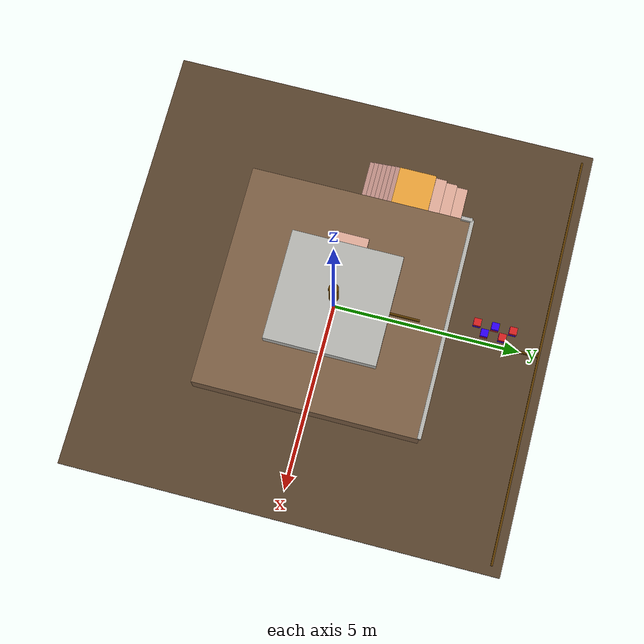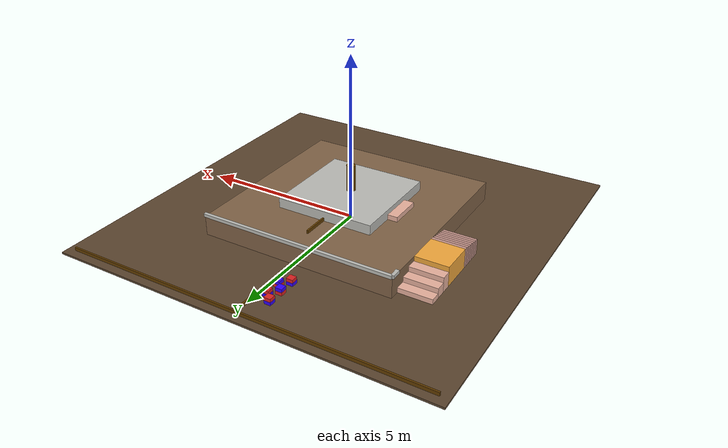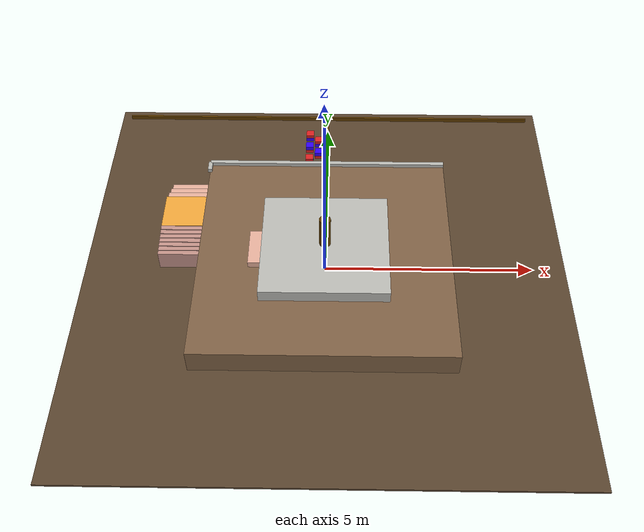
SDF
<sdf version="1.7">
 <world name="robocon2027_arena">
  <model name="field_base">
   <static>1</static>
   <pose>0 0 -0.03 0 -0 0</pose>
   <link name="link">
    <collision name="col"><geometry><box><size>11.6 11.6 0.06</size></box></geometry></collision>
    <visual name="vis">
     <geometry><box><size>11.6 11.6 0.06</size></box></geometry>
     <material>
      <ambient>0.361 0.275 0.188 1</ambient>
      <diffuse>0.361 0.275 0.188 1</diffuse>
      <specular>0.04 0.04 0.04 1</specular>
      <emissive>0 0 0 1</emissive>
     </material>
    </visual>
   </link>
  </model>
  <model name="catch_floor">
   <static>1</static>
   <pose>0 0 -0.25 0 -0 0</pose>
   <link name="link">
    <collision name="col">
     <geometry><plane><normal>0 0 1</normal><size>200 200</size></plane></geometry>
    </collision>
   </link>
  </model>
  <model name="l1_platform">
   <static>1</static>
   <pose>0 0 0.3 0 -0 0</pose>
   <link name="link">
    <collision name="col"><geometry><box><size>6 6 0.6</size></box></geometry></collision>
    <visual name="vis">
     <geometry><box><size>6 6 0.6</size></box></geometry>
     <material>
      <ambient>0.51 0.392 0.282 1</ambient>
      <diffuse>0.51 0.392 0.282 1</diffuse>
      <specular>0.04 0.04 0.04 1</specular>
      <emissive>0 0 0 1</emissive>
     </material>
    </visual>
   </link>
  </model>
  <model name="l2_platform">
   <static>1</static>
   <pose>0 0 0.75 0 -0 0</pose>
   <link name="link">
    <collision name="col"><geometry><box><size>3 3 0.3</size></box></geometry></collision>
    <visual name="vis">
     <geometry><box><size>3 3 0.3</size></box></geometry>
     <material>
      <ambient>0.745 0.745 0.725 1</ambient>
      <diffuse>0.745 0.745 0.725 1</diffuse>
      <specular>0.04 0.04 0.04 1</specular>
      <emissive>0 0 0 1</emissive>
     </material>
    </visual>
   </link>
  </model>
  <model name="central_pillar">
   <static>1</static>
   <pose>0 0 1.3 0 -0 0</pose>
   <link name="link">
    <collision name="col">
     <geometry><cylinder><radius>0.135</radius><length>0.8</length></cylinder></geometry>
    </collision>
    <visual name="vis">
     <geometry><cylinder><radius>0.135</radius><length>0.8</length></cylinder></geometry>
     <material>
      <ambient>0.392 0.243 0 1</ambient>
      <diffuse>0.392 0.243 0 1</diffuse>
      <specular>0.04 0.04 0.04 1</specular>
      <emissive>0 0 0 1</emissive>
     </material>
    </visual>
   </link>
  </model>
  <model name="fence_pN">
   <static>1</static>
   <pose>0 5.525 0.05 0 -0 0</pose>
   <link name="link">
    <collision name="col"><geometry><box><size>11.1 0.05 0.1</size></box></geometry></collision>
    <visual name="vis">
     <geometry><box><size>11.1 0.05 0.1</size></box></geometry>
     <material>
      <ambient>0.392 0.243 0 1</ambient>
      <diffuse>0.392 0.243 0 1</diffuse>
      <specular>0.04 0.04 0.04 1</specular>
      <emissive>0 0 0 1</emissive>
     </material>
    </visual>
   </link>
  </model>
  <model name="gdiv_0">
   <static>1</static>
   <pose>0 3.325 0.05 0 -0 0</pose>
   <link name="link">
    <collision name="col"><geometry><box><size>0.05 0.65 0.1</size></box></geometry></collision>
    <visual name="vis">
     <geometry><box><size>0.05 0.65 0.1</size></box></geometry>
     <material>
      <ambient>0.392 0.243 0 1</ambient>
      <diffuse>0.392 0.243 0 1</diffuse>
      <specular>0.04 0.04 0.04 1</specular>
      <emissive>0 0 0 1</emissive>
     </material>
    </visual>
   </link>
  </model>
  <model name="gdiv_1">
   <static>1</static>
   <pose>0 5.175 0.05 0 -0 0</pose>
   <link name="link">
    <collision name="col"><geometry><box><size>0.05 0.65 0.1</size></box></geometry></collision>
    <visual name="vis">
     <geometry><box><size>0.05 0.65 0.1</size></box></geometry>
     <material>
      <ambient>0.392 0.243 0 1</ambient>
      <diffuse>0.392 0.243 0 1</diffuse>
      <specular>0.04 0.04 0.04 1</specular>
      <emissive>0 0 0 1</emissive>
     </material>
    </visual>
   </link>
  </model>
  <model name="ddiv_0">
   <static>1</static>
   <pose>0 1.9 0.65 0 -0 0</pose>
   <link name="link">
    <collision name="col"><geometry><box><size>0.05 0.8 0.1</size></box></geometry></collision>
    <visual name="vis">
     <geometry><box><size>0.05 0.8 0.1</size></box></geometry>
     <material>
      <ambient>0.392 0.243 0 1</ambient>
      <diffuse>0.392 0.243 0 1</diffuse>
      <specular>0.04 0.04 0.04 1</specular>
      <emissive>0 0 0 1</emissive>
     </material>
    </visual>
   </link>
  </model>
  <model name="rampsup_red_23">
   <static>1</static>
   <pose>-3.5 0.0417 0.235 0 -0 0</pose>
   <link name="link">
    <collision name="col"><geometry><box><size>1 0.118667 0.47</size></box></geometry></collision>
    <visual name="vis">
     <geometry><box><size>1 0.118667 0.47</size></box></geometry>
     <material>
      <ambient>0.784 0.588 0.549 1</ambient>
      <diffuse>0.784 0.588 0.549 1</diffuse>
      <specular>0.04 0.04 0.04 1</specular>
      <emissive>0 0 0 1</emissive>
     </material>
    </visual>
   </link>
  </model>
  <model name="rampsup_red_24">
   <static>1</static>
   <pose>-3.5 0.1583 0.245 0 -0 0</pose>
   <link name="link">
    <collision name="col"><geometry><box><size>1 0.118667 0.49</size></box></geometry></collision>
    <visual name="vis">
     <geometry><box><size>1 0.118667 0.49</size></box></geometry>
     <material>
      <ambient>0.784 0.588 0.549 1</ambient>
      <diffuse>0.784 0.588 0.549 1</diffuse>
      <specular>0.04 0.04 0.04 1</specular>
      <emissive>0 0 0 1</emissive>
     </material>
    </visual>
   </link>
  </model>
  <model name="rampsup_red_25">
   <static>1</static>
   <pose>-3.5 0.275 0.255 0 -0 0</pose>
   <link name="link">
    <collision name="col"><geometry><box><size>1 0.118667 0.51</size></box></geometry></collision>
    <visual name="vis">
     <geometry><box><size>1 0.118667 0.51</size></box></geometry>
     <material>
      <ambient>0.784 0.588 0.549 1</ambient>
      <diffuse>0.784 0.588 0.549 1</diffuse>
      <specular>0.04 0.04 0.04 1</specular>
      <emissive>0 0 0 1</emissive>
     </material>
    </visual>
   </link>
  </model>
  <model name="rampsup_red_26">
   <static>1</static>
   <pose>-3.5 0.3917 0.265 0 -0 0</pose>
   <link name="link">
    <collision name="col"><geometry><box><size>1 0.118667 0.53</size></box></geometry></collision>
    <visual name="vis">
     <geometry><box><size>1 0.118667 0.53</size></box></geometry>
     <material>
      <ambient>0.784 0.588 0.549 1</ambient>
      <diffuse>0.784 0.588 0.549 1</diffuse>
      <specular>0.04 0.04 0.04 1</specular>
      <emissive>0 0 0 1</emissive>
     </material>
    </visual>
   </link>
  </model>
  <model name="rampsup_red_27">
   <static>1</static>
   <pose>-3.5 0.5083 0.275 0 -0 0</pose>
   <link name="link">
    <collision name="col"><geometry><box><size>1 0.118667 0.55</size></box></geometry></collision>
    <visual name="vis">
     <geometry><box><size>1 0.118667 0.55</size></box></geometry>
     <material>
      <ambient>0.784 0.588 0.549 1</ambient>
      <diffuse>0.784 0.588 0.549 1</diffuse>
      <specular>0.04 0.04 0.04 1</specular>
      <emissive>0 0 0 1</emissive>
     </material>
    </visual>
   </link>
  </model>
  <model name="rampsup_red_28">
   <static>1</static>
   <pose>-3.5 0.625 0.285 0 -0 0</pose>
   <link name="link">
    <collision name="col"><geometry><box><size>1 0.118667 0.57</size></box></geometry></collision>
    <visual name="vis">
     <geometry><box><size>1 0.118667 0.57</size></box></geometry>
     <material>
      <ambient>0.784 0.588 0.549 1</ambient>
      <diffuse>0.784 0.588 0.549 1</diffuse>
      <specular>0.04 0.04 0.04 1</specular>
      <emissive>0 0 0 1</emissive>
     </material>
    </visual>
   </link>
  </model>
  <model name="rampsup_red_29">
   <static>1</static>
   <pose>-3.5 0.7417 0.295 0 -0 0</pose>
   <link name="link">
    <collision name="col"><geometry><box><size>1 0.118667 0.59</size></box></geometry></collision>
    <visual name="vis">
     <geometry><box><size>1 0.118667 0.59</size></box></geometry>
     <material>
      <ambient>0.784 0.588 0.549 1</ambient>
      <diffuse>0.784 0.588 0.549 1</diffuse>
      <specular>0.04 0.04 0.04 1</specular>
      <emissive>0 0 0 1</emissive>
     </material>
    </visual>
   </link>
  </model>
  <model name="plat_red">
   <static>1</static>
   <pose>-3.5 1.3 0.3 0 -0 0</pose>
   <link name="link">
    <collision name="col"><geometry><box><size>1 1 0.6</size></box></geometry></collision>
    <visual name="vis">
     <geometry><box><size>1 1 0.6</size></box></geometry>
     <material>
      <ambient>0.961 0.667 0.235 1</ambient>
      <diffuse>0.961 0.667 0.235 1</diffuse>
      <specular>0.04 0.04 0.04 1</specular>
      <emissive>0 0 0 1</emissive>
     </material>
    </visual>
   </link>
  </model>
  <model name="stp_red_0">
   <static>1</static>
   <pose>-3.5 1.95 0.225 0 -0 0</pose>
   <link name="link">
    <collision name="col"><geometry><box><size>1 0.3 0.45</size></box></geometry></collision>
    <visual name="vis">
     <geometry><box><size>1 0.3 0.45</size></box></geometry>
     <material>
      <ambient>0.922 0.706 0.627 1</ambient>
      <diffuse>0.922 0.706 0.627 1</diffuse>
      <specular>0.04 0.04 0.04 1</specular>
      <emissive>0 0 0 1</emissive>
     </material>
    </visual>
   </link>
  </model>
  <model name="stp_red_1">
   <static>1</static>
   <pose>-3.5 2.25 0.15 0 -0 0</pose>
   <link name="link">
    <collision name="col"><geometry><box><size>1 0.3 0.3</size></box></geometry></collision>
    <visual name="vis">
     <geometry><box><size>1 0.3 0.3</size></box></geometry>
     <material>
      <ambient>0.922 0.706 0.627 1</ambient>
      <diffuse>0.922 0.706 0.627 1</diffuse>
      <specular>0.04 0.04 0.04 1</specular>
      <emissive>0 0 0 1</emissive>
     </material>
    </visual>
   </link>
  </model>
  <model name="stp_red_2">
   <static>1</static>
   <pose>-3.5 2.55 0.075 0 -0 0</pose>
   <link name="link">
    <collision name="col"><geometry><box><size>1 0.3 0.15</size></box></geometry></collision>
    <visual name="vis">
     <geometry><box><size>1 0.3 0.15</size></box></geometry>
     <material>
      <ambient>0.922 0.706 0.627 1</ambient>
      <diffuse>0.922 0.706 0.627 1</diffuse>
      <specular>0.04 0.04 0.04 1</specular>
      <emissive>0 0 0 1</emissive>
     </material>
    </visual>
   </link>
  </model>
  <model name="st2_red">
   <static>1</static>
   <pose>-1.65 0 0.675 0 -0 0</pose>
   <link name="link">
    <collision name="col"><geometry><box><size>0.3 1 0.15</size></box></geometry></collision>
    <visual name="vis">
     <geometry><box><size>0.3 1 0.15</size></box></geometry>
     <material>
      <ambient>0.922 0.706 0.627 1</ambient>
      <diffuse>0.922 0.706 0.627 1</diffuse>
      <specular>0.04 0.04 0.04 1</specular>
      <emissive>0 0 0 1</emissive>
     </material>
    </visual>
   </link>
  </model>
  <model name="rail_ns+">
   <static>1</static>
   <pose>0 3 0.65 0 -0 0</pose>
   <link name="link">
    <collision name="col"><geometry><box><size>6 0.1 0.1</size></box></geometry></collision>
    <visual name="vis">
     <geometry><box><size>6 0.1 0.1</size></box></geometry>
     <material>
      <ambient>0.745 0.745 0.725 1</ambient>
      <diffuse>0.745 0.745 0.725 1</diffuse>
      <specular>0.04 0.04 0.04 1</specular>
      <emissive>0 0 0 1</emissive>
     </material>
    </visual>
   </link>
  </model>
  <model name="rail_we_-_1">
   <static>1</static>
   <pose>-3 2.85 0.65 0 -0 0</pose>
   <link name="link">
    <collision name="col"><geometry><box><size>0.1 0.3 0.1</size></box></geometry></collision>
    <visual name="vis">
     <geometry><box><size>0.1 0.3 0.1</size></box></geometry>
     <material>
      <ambient>0.745 0.745 0.725 1</ambient>
      <diffuse>0.745 0.745 0.725 1</diffuse>
      <specular>0.04 0.04 0.04 1</specular>
      <emissive>0 0 0 1</emissive>
     </material>
    </visual>
   </link>
  </model>
  <model name="sky_0">
   <static>0</static>
   <pose>-0.48 4.73 0.1 -0 -0 -0</pose>
   <link name="link">
    <inertial>
     <mass>0.22</mass>
     <inertia>
      <ixx>0.00146667</ixx>
      <iyy>0.00146667</iyy>
      <izz>0.00146667</izz>
      <ixy>0</ixy>
      <ixz>0</ixz>
      <iyz>0</iyz>
     </inertia>
    </inertial>
    <collision name="col"><geometry><box><size>0.2 0.2 0.2</size></box></geometry></collision>
    <visual name="up">
     <pose>0 0 0.05 0 -0 0</pose>
     <geometry><box><size>0.2 0.2 0.1</size></box></geometry>
     <material>
      <ambient>0.875 0.133 0.133 1</ambient>
      <diffuse>0.875 0.133 0.133 1</diffuse>
      <specular>0.04 0.04 0.04 1</specular>
      <emissive>0 0 0 1</emissive>
     </material>
    </visual>
    <visual name="dn">
     <pose>0 0 -0.05 0 -0 0</pose>
     <geometry><box><size>0.2 0.2 0.1</size></box></geometry>
     <material>
      <ambient>0.196 0 1 1</ambient>
      <diffuse>0.196 0 1 1</diffuse>
      <specular>0.04 0.04 0.04 1</specular>
      <emissive>0 0 0 1</emissive>
     </material>
    </visual>
   </link>
  </model>
  <model name="sky_3">
   <static>0</static>
   <pose>-0.24 4.49 0.1 -0 -0 -0</pose>
   <link name="link">
    <inertial>
     <mass>0.22</mass>
     <inertia>
      <ixx>0.00146667</ixx>
      <iyy>0.00146667</iyy>
      <izz>0.00146667</izz>
      <ixy>0</ixy>
      <ixz>0</ixz>
      <iyz>0</iyz>
     </inertia>
    </inertial>
    <collision name="col"><geometry><box><size>0.2 0.2 0.2</size></box></geometry></collision>
    <visual name="up">
     <pose>0 0 0.05 0 -0 0</pose>
     <geometry><box><size>0.2 0.2 0.1</size></box></geometry>
     <material>
      <ambient>0.875 0.133 0.133 1</ambient>
      <diffuse>0.875 0.133 0.133 1</diffuse>
      <specular>0.04 0.04 0.04 1</specular>
      <emissive>0 0 0 1</emissive>
     </material>
    </visual>
    <visual name="dn">
     <pose>0 0 -0.05 0 -0 0</pose>
     <geometry><box><size>0.2 0.2 0.1</size></box></geometry>
     <material>
      <ambient>0.196 0 1 1</ambient>
      <diffuse>0.196 0 1 1</diffuse>
      <specular>0.04 0.04 0.04 1</specular>
      <emissive>0 0 0 1</emissive>
     </material>
    </visual>
   </link>
  </model>
  <model name="sky_5">
   <static>0</static>
   <pose>-0.48 4.25 0.1 -0 -0 -0</pose>
   <link name="link">
    <inertial>
     <mass>0.22</mass>
     <inertia>
      <ixx>0.00146667</ixx>
      <iyy>0.00146667</iyy>
      <izz>0.00146667</izz>
      <ixy>0</ixy>
      <ixz>0</ixz>
      <iyz>0</iyz>
     </inertia>
    </inertial>
    <collision name="col"><geometry><box><size>0.2 0.2 0.2</size></box></geometry></collision>
    <visual name="up">
     <pose>0 0 0.05 0 -0 0</pose>
     <geometry><box><size>0.2 0.2 0.1</size></box></geometry>
     <material>
      <ambient>0.196 0 1 1</ambient>
      <diffuse>0.196 0 1 1</diffuse>
      <specular>0.04 0.04 0.04 1</specular>
      <emissive>0 0 0 1</emissive>
     </material>
    </visual>
    <visual name="dn">
     <pose>0 0 -0.05 0 -0 0</pose>
     <geometry><box><size>0.2 0.2 0.1</size></box></geometry>
     <material>
      <ambient>0.875 0.133 0.133 1</ambient>
      <diffuse>0.875 0.133 0.133 1</diffuse>
      <specular>0.04 0.04 0.04 1</specular>
      <emissive>0 0 0 1</emissive>
     </material>
    </visual>
   </link>
  </model>
  <model name="sky_7">
   <static>0</static>
   <pose>-0.24 4.01 0.1 -0 -0 -0</pose>
   <link name="link">
    <inertial>
     <mass>0.22</mass>
     <inertia>
      <ixx>0.00146667</ixx>
      <iyy>0.00146667</iyy>
      <izz>0.00146667</izz>
      <ixy>0</ixy>
      <ixz>0</ixz>
      <iyz>0</iyz>
     </inertia>
    </inertial>
    <collision name="col"><geometry><box><size>0.2 0.2 0.2</size></box></geometry></collision>
    <visual name="up">
     <pose>0 0 0.05 0 -0 0</pose>
     <geometry><box><size>0.2 0.2 0.1</size></box></geometry>
     <material>
      <ambient>0.196 0 1 1</ambient>
      <diffuse>0.196 0 1 1</diffuse>
      <specular>0.04 0.04 0.04 1</specular>
      <emissive>0 0 0 1</emissive>
     </material>
    </visual>
    <visual name="dn">
     <pose>0 0 -0.05 0 -0 0</pose>
     <geometry><box><size>0.2 0.2 0.1</size></box></geometry>
     <material>
      <ambient>0.875 0.133 0.133 1</ambient>
      <diffuse>0.875 0.133 0.133 1</diffuse>
      <specular>0.04 0.04 0.04 1</specular>
      <emissive>0 0 0 1</emissive>
     </material>
    </visual>
   </link>
  </model>
  <model name="sky_9">
   <static>0</static>
   <pose>-0.48 3.77 0.1 -0 -0 -0</pose>
   <link name="link">
    <inertial>
     <mass>0.22</mass>
     <inertia>
      <ixx>0.00146667</ixx>
      <iyy>0.00146667</iyy>
      <izz>0.00146667</izz>
      <ixy>0</ixy>
      <ixz>0</ixz>
      <iyz>0</iyz>
     </inertia>
    </inertial>
    <collision name="col"><geometry><box><size>0.2 0.2 0.2</size></box></geometry></collision>
    <visual name="up">
     <pose>0 0 0.05 0 -0 0</pose>
     <geometry><box><size>0.2 0.2 0.1</size></box></geometry>
     <material>
      <ambient>0.875 0.133 0.133 1</ambient>
      <diffuse>0.875 0.133 0.133 1</diffuse>
      <specular>0.04 0.04 0.04 1</specular>
      <emissive>0 0 0 1</emissive>
     </material>
    </visual>
    <visual name="dn">
     <pose>0 0 -0.05 0 -0 0</pose>
     <geometry><box><size>0.2 0.2 0.1</size></box></geometry>
     <material>
      <ambient>0.196 0 1 1</ambient>
      <diffuse>0.196 0 1 1</diffuse>
      <specular>0.04 0.04 0.04 1</specular>
      <emissive>0 0 0 1</emissive>
     </material>
    </visual>
   </link>
  </model>
 </world>
</sdf>
